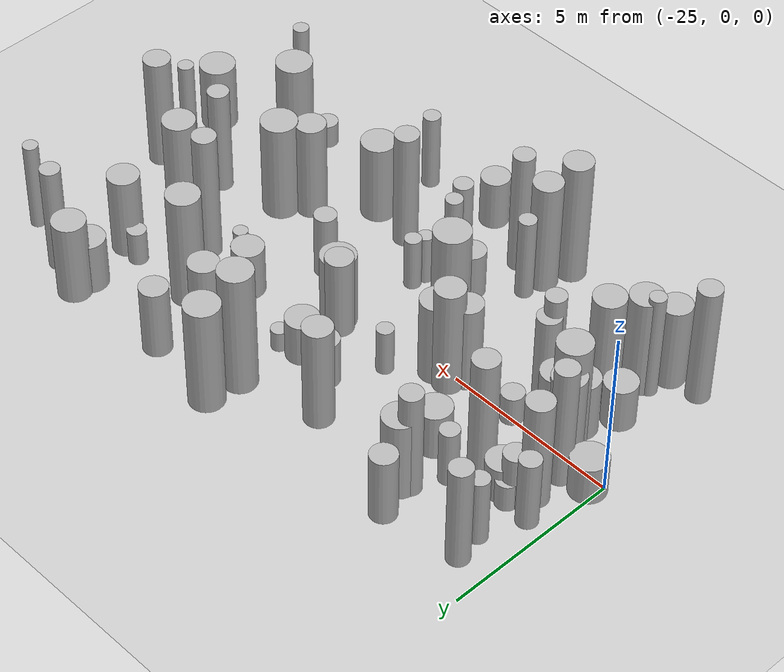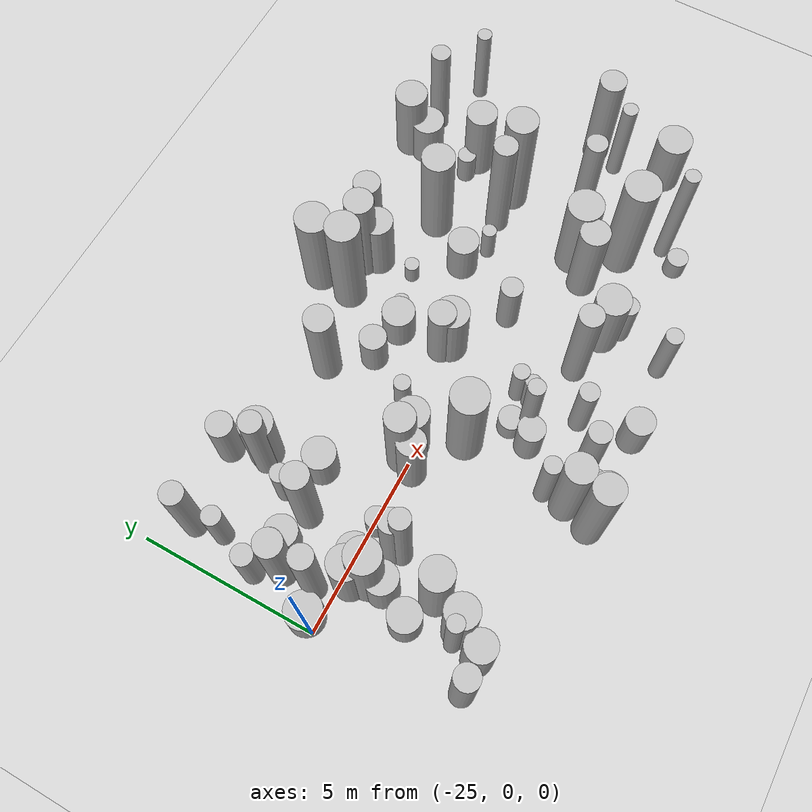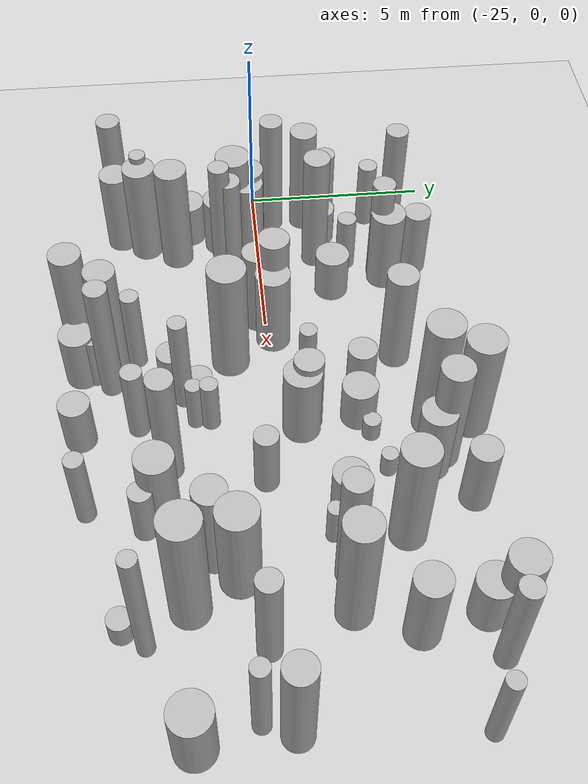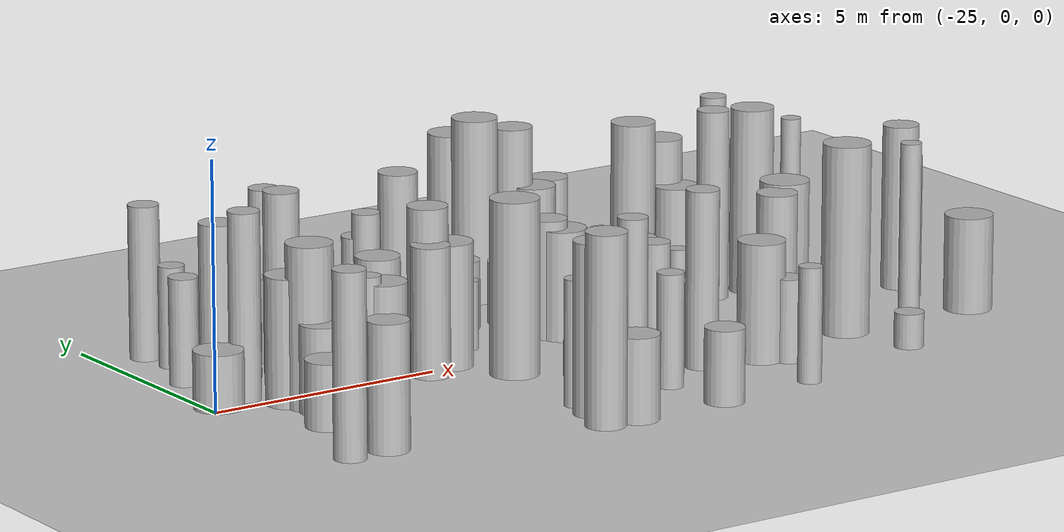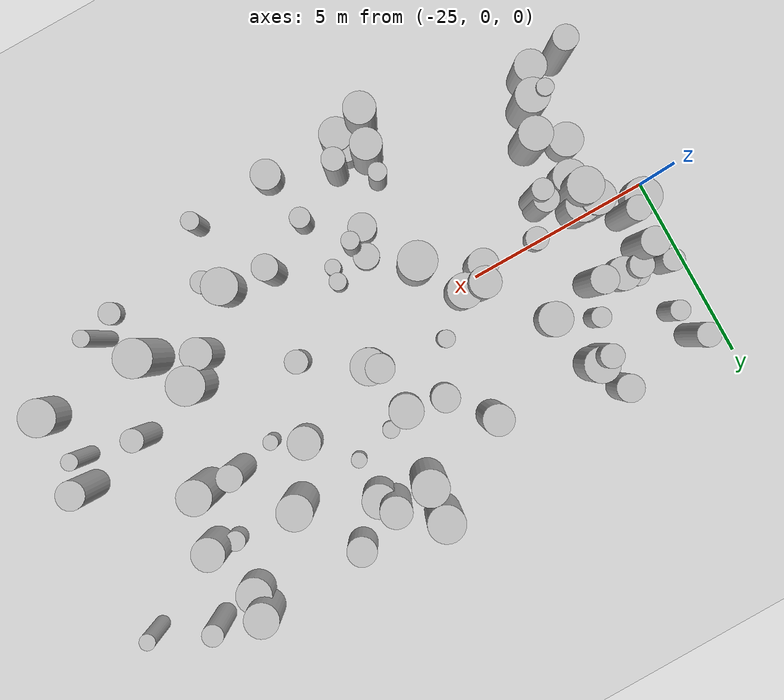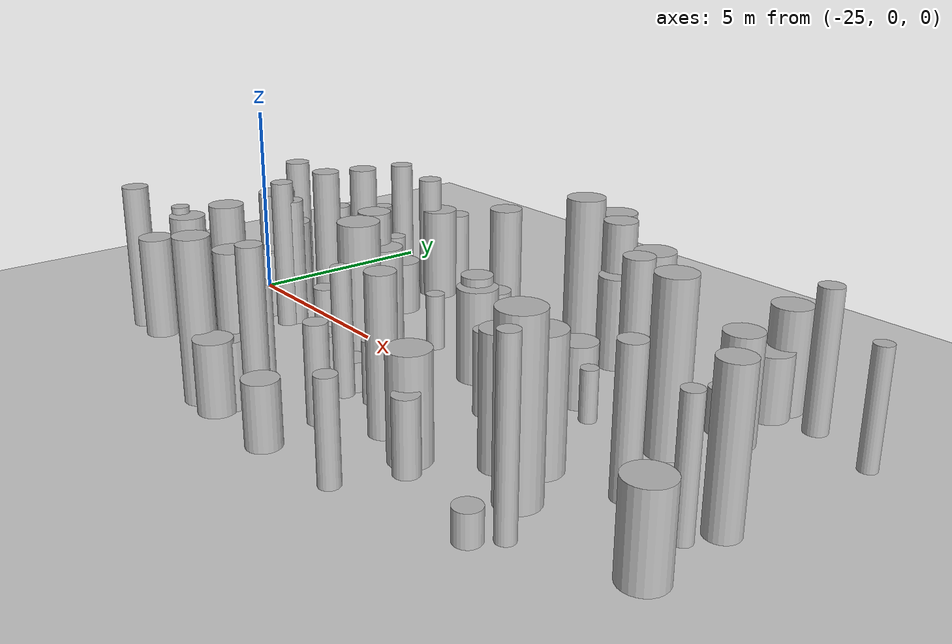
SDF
<sdf version="1.4">
 <world name="default">
  <include><uri>model://ground_plane</uri></include>
  <include><uri>model://sun</uri></include>
  <model name="forest">
   <static>true</static>
   <link name="cylinder5">
    <pose>-23.679742061325815 2.01241743389272 0.4087587626797539 0 0 0</pose>
    <visual name="visual">
     <geometry>
      <cylinder><radius>0.30006810378759863</radius><length>0.8175175253595078</length></cylinder>
     </geometry>
    </visual>
    <collision name="collision">
     <geometry>
      <cylinder><radius>0.30006810378759863</radius><length>0.8175175253595078</length></cylinder>
     </geometry>
     <max_contacts>0</max_contacts>
    </collision>
   </link>
   <link name="cylinder7">
    <pose>-10.525573063987343 -0.618550906194625 1.607458766258477 0 0 0</pose>
    <visual name="visual">
     <geometry>
      <cylinder><radius>0.29693377543695243</radius><length>3.214917532516954</length></cylinder>
     </geometry>
    </visual>
    <collision name="collision">
     <geometry>
      <cylinder><radius>0.29693377543695243</radius><length>3.214917532516954</length></cylinder>
     </geometry>
     <max_contacts>0</max_contacts>
    </collision>
   </link>
   <link name="cylinder8">
    <pose>-21.800550094250998 3.261826505791305 1.4079845272820526 0 0 0</pose>
    <visual name="visual">
     <geometry>
      <cylinder><radius>0.2014375265154011</radius><length>2.815969054564105</length></cylinder>
     </geometry>
    </visual>
    <collision name="collision">
     <geometry>
      <cylinder><radius>0.2014375265154011</radius><length>2.815969054564105</length></cylinder>
     </geometry>
     <max_contacts>0</max_contacts>
    </collision>
   </link>
   <link name="cylinder9">
    <pose>-18.160809083049735 -4.134436356728669 1.8794305216573546 0 0 0</pose>
    <visual name="visual">
     <geometry>
      <cylinder><radius>0.2956200059763034</radius><length>3.758861043314709</length></cylinder>
     </geometry>
    </visual>
    <collision name="collision">
     <geometry>
      <cylinder><radius>0.2956200059763034</radius><length>3.758861043314709</length></cylinder>
     </geometry>
     <max_contacts>0</max_contacts>
    </collision>
   </link>
   <link name="cylinder16">
    <pose>-13.255122866712126 1.1187745779611848 0.6129788862393675 0 0 0</pose>
    <visual name="visual">
     <geometry>
      <cylinder><radius>0.20268167410298113</radius><length>1.225957772478735</length></cylinder>
     </geometry>
    </visual>
    <collision name="collision">
     <geometry>
      <cylinder><radius>0.20268167410298113</radius><length>1.225957772478735</length></cylinder>
     </geometry>
     <max_contacts>0</max_contacts>
    </collision>
   </link>
   <link name="cylinder18">
    <pose>-18.015127092285212 -2.5297718127896287 0.7112004149707867 0 0 0</pose>
    <visual name="visual">
     <geometry>
      <cylinder><radius>0.3739082902309111</radius><length>1.4224008299415734</length></cylinder>
     </geometry>
    </visual>
    <collision name="collision">
     <geometry>
      <cylinder><radius>0.3739082902309111</radius><length>1.4224008299415734</length></cylinder>
     </geometry>
     <max_contacts>0</max_contacts>
    </collision>
   </link>
   <link name="cylinder19">
    <pose>-14.986373206738374 2.6608807107499732 0.34965633167286914 0 0 0</pose>
    <visual name="visual">
     <geometry>
      <cylinder><radius>0.20911420880428544</radius><length>0.6993126633457383</length></cylinder>
     </geometry>
    </visual>
    <collision name="collision">
     <geometry>
      <cylinder><radius>0.20911420880428544</radius><length>0.6993126633457383</length></cylinder>
     </geometry>
     <max_contacts>0</max_contacts>
    </collision>
   </link>
   <link name="cylinder26">
    <pose>-15.441778785360121 -2.6818119872697443 1.7981005157965062 0 0 0</pose>
    <visual name="visual">
     <geometry>
      <cylinder><radius>0.33334163362651703</radius><length>3.5962010315930124</length></cylinder>
     </geometry>
    </visual>
    <collision name="collision">
     <geometry>
      <cylinder><radius>0.33334163362651703</radius><length>3.5962010315930124</length></cylinder>
     </geometry>
     <max_contacts>0</max_contacts>
    </collision>
   </link>
   <link name="cylinder31">
    <pose>-23.738585029574498 1.817528318224376 0.8247612334664344 0 0 0</pose>
    <visual name="visual">
     <geometry>
      <cylinder><radius>0.32685892989750714</radius><length>1.6495224669328687</length></cylinder>
     </geometry>
    </visual>
    <collision name="collision">
     <geometry>
      <cylinder><radius>0.32685892989750714</radius><length>1.6495224669328687</length></cylinder>
     </geometry>
     <max_contacts>0</max_contacts>
    </collision>
   </link>
   <link name="cylinder33">
    <pose>-22.20371293826167 -1.0198286153366718 1.8924943667401357 0 0 0</pose>
    <visual name="visual">
     <geometry>
      <cylinder><radius>0.27601700017954345</radius><length>3.7849887334802714</length></cylinder>
     </geometry>
    </visual>
    <collision name="collision">
     <geometry>
      <cylinder><radius>0.27601700017954345</radius><length>3.7849887334802714</length></cylinder>
     </geometry>
     <max_contacts>0</max_contacts>
    </collision>
   </link>
   <link name="cylinder40">
    <pose>-18.49357560465792 1.0151491741998022 0.7010873580335185 0 0 0</pose>
    <visual name="visual">
     <geometry>
      <cylinder><radius>0.23333337634097945</radius><length>1.402174716067037</length></cylinder>
     </geometry>
    </visual>
    <collision name="collision">
     <geometry>
      <cylinder><radius>0.23333337634097945</radius><length>1.402174716067037</length></cylinder>
     </geometry>
     <max_contacts>0</max_contacts>
    </collision>
   </link>
   <link name="cylinder41">
    <pose>-16.223117321788628 4.930585165584869 1.644054146244402 0 0 0</pose>
    <visual name="visual">
     <geometry>
      <cylinder><radius>0.48408230626222676</radius><length>3.288108292488804</length></cylinder>
     </geometry>
    </visual>
    <collision name="collision">
     <geometry>
      <cylinder><radius>0.48408230626222676</radius><length>3.288108292488804</length></cylinder>
     </geometry>
     <max_contacts>0</max_contacts>
    </collision>
   </link>
   <link name="cylinder43">
    <pose>-21.837048398225804 -0.08602022806299559 0.43983961650292613 0 0 0</pose>
    <visual name="visual">
     <geometry>
      <cylinder><radius>0.31036477772576027</radius><length>0.8796792330058523</length></cylinder>
     </geometry>
    </visual>
    <collision name="collision">
     <geometry>
      <cylinder><radius>0.31036477772576027</radius><length>0.8796792330058523</length></cylinder>
     </geometry>
     <max_contacts>0</max_contacts>
    </collision>
   </link>
   <link name="cylinder46">
    <pose>-12.891575511027565 -1.708502826013473 1.4711535961352924 0 0 0</pose>
    <visual name="visual">
     <geometry>
      <cylinder><radius>0.4126154002610912</radius><length>2.942307192270585</length></cylinder>
     </geometry>
    </visual>
    <collision name="collision">
     <geometry>
      <cylinder><radius>0.4126154002610912</radius><length>2.942307192270585</length></cylinder>
     </geometry>
     <max_contacts>0</max_contacts>
    </collision>
   </link>
   <link name="cylinder52">
    <pose>-16.8601363615864 -2.0002097697674657 0.7412490017964124 0 0 0</pose>
    <visual name="visual">
     <geometry>
      <cylinder><radius>0.2123701967409388</radius><length>1.4824980035928248</length></cylinder>
     </geometry>
    </visual>
    <collision name="collision">
     <geometry>
      <cylinder><radius>0.2123701967409388</radius><length>1.4824980035928248</length></cylinder>
     </geometry>
     <max_contacts>0</max_contacts>
    </collision>
   </link>
   <link name="cylinder53">
    <pose>-13.144577644127398 2.8485634309416943 1.7484170588877241 0 0 0</pose>
    <visual name="visual">
     <geometry>
      <cylinder><radius>0.45996686888993416</radius><length>3.4968341177754483</length></cylinder>
     </geometry>
    </visual>
    <collision name="collision">
     <geometry>
      <cylinder><radius>0.45996686888993416</radius><length>3.4968341177754483</length></cylinder>
     </geometry>
     <max_contacts>0</max_contacts>
    </collision>
   </link>
   <link name="cylinder55">
    <pose>-8.5950041946599 -0.18264373152601188 1.7082149559520043 0 0 0</pose>
    <visual name="visual">
     <geometry>
      <cylinder><radius>0.37351376677049514</radius><length>3.4164299119040087</length></cylinder>
     </geometry>
    </visual>
    <collision name="collision">
     <geometry>
      <cylinder><radius>0.37351376677049514</radius><length>3.4164299119040087</length></cylinder>
     </geometry>
     <max_contacts>0</max_contacts>
    </collision>
   </link>
   <link name="cylinder58">
    <pose>-11.255020018472834 1.3289213521882672 1.9238639992878968 0 0 0</pose>
    <visual name="visual">
     <geometry>
      <cylinder><radius>0.4449356155917538</radius><length>3.8477279985757935</length></cylinder>
     </geometry>
    </visual>
    <collision name="collision">
     <geometry>
      <cylinder><radius>0.4449356155917538</radius><length>3.8477279985757935</length></cylinder>
     </geometry>
     <max_contacts>0</max_contacts>
    </collision>
   </link>
   <link name="cylinder59">
    <pose>-24.002782389595684 0.5042752308654723 1.8770728420283596 0 0 0</pose>
    <visual name="visual">
     <geometry>
      <cylinder><radius>0.3143003682034119</radius><length>3.754145684056719</length></cylinder>
     </geometry>
    </visual>
    <collision name="collision">
     <geometry>
      <cylinder><radius>0.3143003682034119</radius><length>3.754145684056719</length></cylinder>
     </geometry>
     <max_contacts>0</max_contacts>
    </collision>
   </link>
   <link name="cylinder60">
    <pose>-11.20258796285028 -3.8493136906173753 0.3564758136327316 0 0 0</pose>
    <visual name="visual">
     <geometry>
      <cylinder><radius>0.2998729793484964</radius><length>0.7129516272654632</length></cylinder>
     </geometry>
    </visual>
    <collision name="collision">
     <geometry>
      <cylinder><radius>0.2998729793484964</radius><length>0.7129516272654632</length></cylinder>
     </geometry>
     <max_contacts>0</max_contacts>
    </collision>
   </link>
   <link name="cylinder66">
    <pose>-14.1715463676721 -2.917855704786513 1.2150279252211407 0 0 0</pose>
    <visual name="visual">
     <geometry>
      <cylinder><radius>0.47778043909406503</radius><length>2.4300558504422813</length></cylinder>
     </geometry>
    </visual>
    <collision name="collision">
     <geometry>
      <cylinder><radius>0.47778043909406503</radius><length>2.4300558504422813</length></cylinder>
     </geometry>
     <max_contacts>0</max_contacts>
    </collision>
   </link>
   <link name="cylinder68">
    <pose>-14.887149694921693 -0.34536853120764555 0.9706076712247758 0 0 0</pose>
    <visual name="visual">
     <geometry>
      <cylinder><radius>0.30774516073615427</radius><length>1.9412153424495515</length></cylinder>
     </geometry>
    </visual>
    <collision name="collision">
     <geometry>
      <cylinder><radius>0.30774516073615427</radius><length>1.9412153424495515</length></cylinder>
     </geometry>
     <max_contacts>0</max_contacts>
    </collision>
   </link>
   <link name="cylinder70">
    <pose>-16.792238933854627 -1.6147479718565183 0.7901780546410666 0 0 0</pose>
    <visual name="visual">
     <geometry>
      <cylinder><radius>0.23072785165468096</radius><length>1.5803561092821332</length></cylinder>
     </geometry>
    </visual>
    <collision name="collision">
     <geometry>
      <cylinder><radius>0.23072785165468096</radius><length>1.5803561092821332</length></cylinder>
     </geometry>
     <max_contacts>0</max_contacts>
    </collision>
   </link>
   <link name="cylinder72">
    <pose>-8.315024353677362 3.9044192635447157 1.3431335159264037 0 0 0</pose>
    <visual name="visual">
     <geometry>
      <cylinder><radius>0.2103194928219873</radius><length>2.6862670318528075</length></cylinder>
     </geometry>
    </visual>
    <collision name="collision">
     <geometry>
      <cylinder><radius>0.2103194928219873</radius><length>2.6862670318528075</length></cylinder>
     </geometry>
     <max_contacts>0</max_contacts>
    </collision>
   </link>
   <link name="cylinder76">
    <pose>-23.21263782120473 -3.178663896762618 1.5342078549653122 0 0 0</pose>
    <visual name="visual">
     <geometry>
      <cylinder><radius>0.441936661298123</radius><length>3.0684157099306244</length></cylinder>
     </geometry>
    </visual>
    <collision name="collision">
     <geometry>
      <cylinder><radius>0.441936661298123</radius><length>3.0684157099306244</length></cylinder>
     </geometry>
     <max_contacts>0</max_contacts>
    </collision>
   </link>
   <link name="cylinder77">
    <pose>-16.689673175686437 2.135176522671366 0.6310616914309508 0 0 0</pose>
    <visual name="visual">
     <geometry>
      <cylinder><radius>0.45890008550078465</radius><length>1.2621233828619016</length></cylinder>
     </geometry>
    </visual>
    <collision name="collision">
     <geometry>
      <cylinder><radius>0.45890008550078465</radius><length>1.2621233828619016</length></cylinder>
     </geometry>
     <max_contacts>0</max_contacts>
    </collision>
   </link>
   <link name="cylinder79">
    <pose>-10.999800799312503 4.311692076800821 0.7698859985121229 0 0 0</pose>
    <visual name="visual">
     <geometry>
      <cylinder><radius>0.4735187933917541</radius><length>1.5397719970242458</length></cylinder>
     </geometry>
    </visual>
    <collision name="collision">
     <geometry>
      <cylinder><radius>0.4735187933917541</radius><length>1.5397719970242458</length></cylinder>
     </geometry>
     <max_contacts>0</max_contacts>
    </collision>
   </link>
   <link name="cylinder81">
    <pose>-20.1601837393649 -0.1788693429490804 1.3222436946086389 0 0 0</pose>
    <visual name="visual">
     <geometry>
      <cylinder><radius>0.39195667636804743</radius><length>2.6444873892172778</length></cylinder>
     </geometry>
    </visual>
    <collision name="collision">
     <geometry>
      <cylinder><radius>0.39195667636804743</radius><length>2.6444873892172778</length></cylinder>
     </geometry>
     <max_contacts>0</max_contacts>
    </collision>
   </link>
   <link name="cylinder83">
    <pose>-19.315599351364842 -4.890521053171561 1.9078571329891796 0 0 0</pose>
    <visual name="visual">
     <geometry>
      <cylinder><radius>0.40758707059049837</radius><length>3.815714265978359</length></cylinder>
     </geometry>
    </visual>
    <collision name="collision">
     <geometry>
      <cylinder><radius>0.40758707059049837</radius><length>3.815714265978359</length></cylinder>
     </geometry>
     <max_contacts>0</max_contacts>
    </collision>
   </link>
   <link name="cylinder85">
    <pose>-19.047170470343634 -4.106897316308888 1.7123463860957733 0 0 0</pose>
    <visual name="visual">
     <geometry>
      <cylinder><radius>0.40598088709907587</radius><length>3.4246927721915466</length></cylinder>
     </geometry>
    </visual>
    <collision name="collision">
     <geometry>
      <cylinder><radius>0.40598088709907587</radius><length>3.4246927721915466</length></cylinder>
     </geometry>
     <max_contacts>0</max_contacts>
    </collision>
   </link>
   <link name="cylinder86">
    <pose>-17.565739772354643 -2.2725960441776794 1.518001080866863 0 0 0</pose>
    <visual name="visual">
     <geometry>
      <cylinder><radius>0.2343963553725524</radius><length>3.036002161733726</length></cylinder>
     </geometry>
    </visual>
    <collision name="collision">
     <geometry>
      <cylinder><radius>0.2343963553725524</radius><length>3.036002161733726</length></cylinder>
     </geometry>
     <max_contacts>0</max_contacts>
    </collision>
   </link>
   <link name="cylinder92">
    <pose>-23.605255366187304 -3.890545337483985 1.2733394704843657 0 0 0</pose>
    <visual name="visual">
     <geometry>
      <cylinder><radius>0.41656951138443865</radius><length>2.5466789409687314</length></cylinder>
     </geometry>
    </visual>
    <collision name="collision">
     <geometry>
      <cylinder><radius>0.41656951138443865</radius><length>2.5466789409687314</length></cylinder>
     </geometry>
     <max_contacts>0</max_contacts>
    </collision>
   </link>
   <link name="cylinder93">
    <pose>-12.235898153140761 1.3350769733852665 1.9634211387676475 0 0 0</pose>
    <visual name="visual">
     <geometry><cylinder><radius>0.330889316918051</radius><length>3.926842277535295</length></cylinder></geometry>
    </visual>
    <collision name="collision">
     <geometry><cylinder><radius>0.330889316918051</radius><length>3.926842277535295</length></cylinder></geometry>
     <max_contacts>0</max_contacts>
    </collision>
   </link>
   <link name="cylinder94">
    <pose>-16.75526346000349 -3.439557151980136 1.1465755843672694 0 0 0</pose>
    <visual name="visual">
     <geometry>
      <cylinder><radius>0.27008244437615614</radius><length>2.2931511687345387</length></cylinder>
     </geometry>
    </visual>
    <collision name="collision">
     <geometry>
      <cylinder><radius>0.27008244437615614</radius><length>2.2931511687345387</length></cylinder>
     </geometry>
     <max_contacts>0</max_contacts>
    </collision>
   </link>
   <link name="cylinder98">
    <pose>-23.955404658718336 3.2678894962946554 1.0246416726079297 0 0 0</pose>
    <visual name="visual">
     <geometry>
      <cylinder><radius>0.2633409792177793</radius><length>2.0492833452158594</length></cylinder>
     </geometry>
    </visual>
    <collision name="collision">
     <geometry>
      <cylinder><radius>0.2633409792177793</radius><length>2.0492833452158594</length></cylinder>
     </geometry>
     <max_contacts>0</max_contacts>
    </collision>
   </link>
   <link name="cylinder102">
    <pose>-15.00821290799028 3.7248631773758447 1.129759583893875 0 0 0</pose>
    <visual name="visual">
     <geometry><cylinder><radius>0.4488156692700892</radius><length>2.25951916778775</length></cylinder></geometry>
    </visual>
    <collision name="collision">
     <geometry><cylinder><radius>0.4488156692700892</radius><length>2.25951916778775</length></cylinder></geometry>
     <max_contacts>0</max_contacts>
    </collision>
   </link>
   <link name="cylinder104">
    <pose>-22.18188798173581 2.463102872865159 0.8566256288298284 0 0 0</pose>
    <visual name="visual">
     <geometry>
      <cylinder><radius>0.2638952859394953</radius><length>1.7132512576596568</length></cylinder>
     </geometry>
    </visual>
    <collision name="collision">
     <geometry>
      <cylinder><radius>0.2638952859394953</radius><length>1.7132512576596568</length></cylinder>
     </geometry>
     <max_contacts>0</max_contacts>
    </collision>
   </link>
   <link name="cylinder109">
    <pose>-23.072656302917494 -0.24918152201535815 1.2140573640753478 0 0 0</pose>
    <visual name="visual">
     <geometry>
      <cylinder><radius>0.44681803255156716</radius><length>2.4281147281506956</length></cylinder>
     </geometry>
    </visual>
    <collision name="collision">
     <geometry>
      <cylinder><radius>0.44681803255156716</radius><length>2.4281147281506956</length></cylinder>
     </geometry>
     <max_contacts>0</max_contacts>
    </collision>
   </link>
   <link name="cylinder110">
    <pose>-24.037472706217272 1.4096657515775846 1.6666092819000085 0 0 0</pose>
    <visual name="visual">
     <geometry>
      <cylinder><radius>0.3696642518014781</radius><length>3.333218563800017</length></cylinder>
     </geometry>
    </visual>
    <collision name="collision">
     <geometry>
      <cylinder><radius>0.3696642518014781</radius><length>3.333218563800017</length></cylinder>
     </geometry>
     <max_contacts>0</max_contacts>
    </collision>
   </link>
   <link name="cylinder111">
    <pose>-10.648557340793968 2.766643484747312 1.2412183028771706 0 0 0</pose>
    <visual name="visual">
     <geometry>
      <cylinder><radius>0.4359979336834159</radius><length>2.482436605754341</length></cylinder>
     </geometry>
    </visual>
    <collision name="collision">
     <geometry>
      <cylinder><radius>0.4359979336834159</radius><length>2.482436605754341</length></cylinder>
     </geometry>
     <max_contacts>0</max_contacts>
    </collision>
   </link>
   <link name="cylinder113">
    <pose>-14.01765353285257 1.5491414169471804 0.7386839788884425 0 0 0</pose>
    <visual name="visual">
     <geometry>
      <cylinder><radius>0.4390847634054099</radius><length>1.477367957776885</length></cylinder>
     </geometry>
    </visual>
    <collision name="collision">
     <geometry>
      <cylinder><radius>0.4390847634054099</radius><length>1.477367957776885</length></cylinder>
     </geometry>
     <max_contacts>0</max_contacts>
    </collision>
   </link>
   <link name="cylinder114">
    <pose>-18.586567516741297 -4.899811301048916 0.8513382026945039 0 0 0</pose>
    <visual name="visual">
     <geometry>
      <cylinder><radius>0.4417869751457382</radius><length>1.7026764053890078</length></cylinder>
     </geometry>
    </visual>
    <collision name="collision">
     <geometry>
      <cylinder><radius>0.4417869751457382</radius><length>1.7026764053890078</length></cylinder>
     </geometry>
     <max_contacts>0</max_contacts>
    </collision>
   </link>
   <link name="cylinder116">
    <pose>-10.999834425802662 4.852727664397486 1.2280627721068265 0 0 0</pose>
    <visual name="visual">
     <geometry>
      <cylinder><radius>0.45805294557182885</radius><length>2.456125544213653</length></cylinder>
     </geometry>
    </visual>
    <collision name="collision">
     <geometry>
      <cylinder><radius>0.45805294557182885</radius><length>2.456125544213653</length></cylinder>
     </geometry>
     <max_contacts>0</max_contacts>
    </collision>
   </link>
   <link name="cylinder120">
    <pose>-24.72881158626487 0.3070749677650273 0.5772148485738616 0 0 0</pose>
    <visual name="visual">
     <geometry>
      <cylinder><radius>0.49853831401033893</radius><length>1.1544296971477233</length></cylinder>
     </geometry>
    </visual>
    <collision name="collision">
     <geometry>
      <cylinder><radius>0.49853831401033893</radius><length>1.1544296971477233</length></cylinder>
     </geometry>
     <max_contacts>0</max_contacts>
    </collision>
   </link>
   <link name="cylinder123">
    <pose>-16.098505909066482 2.3869953905625447 0.3076052904125777 0 0 0</pose>
    <visual name="visual">
     <geometry>
      <cylinder><radius>0.22712801106276725</radius><length>0.6152105808251555</length></cylinder>
     </geometry>
    </visual>
    <collision name="collision">
     <geometry>
      <cylinder><radius>0.22712801106276725</radius><length>0.6152105808251555</length></cylinder>
     </geometry>
     <max_contacts>0</max_contacts>
    </collision>
   </link>
   <link name="cylinder124">
    <pose>-11.203765662934707 2.8952525008613534 0.5135648505123283 0 0 0</pose>
    <visual name="visual">
     <geometry>
      <cylinder><radius>0.26400455507282866</radius><length>1.0271297010246565</length></cylinder>
     </geometry>
    </visual>
    <collision name="collision">
     <geometry>
      <cylinder><radius>0.26400455507282866</radius><length>1.0271297010246565</length></cylinder>
     </geometry>
     <max_contacts>0</max_contacts>
    </collision>
   </link>
   <link name="cylinder126">
    <pose>-21.902726659275363 4.363762337685518 1.0340782802459074 0 0 0</pose>
    <visual name="visual">
     <geometry>
      <cylinder><radius>0.3630960022357797</radius><length>2.068156560491815</length></cylinder>
     </geometry>
    </visual>
    <collision name="collision">
     <geometry>
      <cylinder><radius>0.3630960022357797</radius><length>2.068156560491815</length></cylinder>
     </geometry>
     <max_contacts>0</max_contacts>
    </collision>
   </link>
   <link name="cylinder127">
    <pose>-17.752732421065467 -1.8676047788331465 0.3646359837134945 0 0 0</pose>
    <visual name="visual">
     <geometry>
      <cylinder><radius>0.35133329433131766</radius><length>0.729271967426989</length></cylinder>
     </geometry>
    </visual>
    <collision name="collision">
     <geometry>
      <cylinder><radius>0.35133329433131766</radius><length>0.729271967426989</length></cylinder>
     </geometry>
     <max_contacts>0</max_contacts>
    </collision>
   </link>
   <link name="cylinder133">
    <pose>-19.940750323801392 0.24716783053184876 1.6526581308329618 0 0 0</pose>
    <visual name="visual">
     <geometry>
      <cylinder><radius>0.40656298232410637</radius><length>3.3053162616659235</length></cylinder>
     </geometry>
    </visual>
    <collision name="collision">
     <geometry>
      <cylinder><radius>0.40656298232410637</radius><length>3.3053162616659235</length></cylinder>
     </geometry>
     <max_contacts>0</max_contacts>
    </collision>
   </link>
   <link name="cylinder134">
    <pose>-8.49681548424142 -2.3227869103806476 0.9886757873030274 0 0 0</pose>
    <visual name="visual">
     <geometry>
      <cylinder><radius>0.4960470987908746</radius><length>1.9773515746060548</length></cylinder>
     </geometry>
    </visual>
    <collision name="collision">
     <geometry>
      <cylinder><radius>0.4960470987908746</radius><length>1.9773515746060548</length></cylinder>
     </geometry>
     <max_contacts>0</max_contacts>
    </collision>
   </link>
   <link name="cylinder135">
    <pose>-23.23590206211388 -0.6128641634697543 1.627294312037436 0 0 0</pose>
    <visual name="visual">
     <geometry>
      <cylinder><radius>0.4680214026659879</radius><length>3.254588624074872</length></cylinder>
     </geometry>
    </visual>
    <collision name="collision">
     <geometry>
      <cylinder><radius>0.4680214026659879</radius><length>3.254588624074872</length></cylinder>
     </geometry>
     <max_contacts>0</max_contacts>
    </collision>
   </link>
   <link name="cylinder137">
    <pose>-22.233174722777406 -0.7901976541597975 1.6385657293357017 0 0 0</pose>
    <visual name="visual">
     <geometry>
      <cylinder><radius>0.3259277537217762</radius><length>3.2771314586714033</length></cylinder>
     </geometry>
    </visual>
    <collision name="collision">
     <geometry>
      <cylinder><radius>0.3259277537217762</radius><length>3.2771314586714033</length></cylinder>
     </geometry>
     <max_contacts>0</max_contacts>
    </collision>
   </link>
   <link name="cylinder138">
    <pose>-13.996701342875939 4.626544473793073 1.0487758882916953 0 0 0</pose>
    <visual name="visual">
     <geometry>
      <cylinder><radius>0.3903911862828955</radius><length>2.0975517765833906</length></cylinder>
     </geometry>
    </visual>
    <collision name="collision">
     <geometry>
      <cylinder><radius>0.3903911862828955</radius><length>2.0975517765833906</length></cylinder>
     </geometry>
     <max_contacts>0</max_contacts>
    </collision>
   </link>
   <link name="cylinder148">
    <pose>-10.800916298256913 -3.3197060132262157 1.9957502735975552 0 0 0</pose>
    <visual name="visual">
     <geometry>
      <cylinder><radius>0.213688495136652</radius><length>3.9915005471951104</length></cylinder>
     </geometry>
    </visual>
    <collision name="collision">
     <geometry>
      <cylinder><radius>0.213688495136652</radius><length>3.9915005471951104</length></cylinder>
     </geometry>
     <max_contacts>0</max_contacts>
    </collision>
   </link>
   <link name="cylinder152">
    <pose>-13.772552205006722 -3.2939459397077586 0.8498652666573677 0 0 0</pose>
    <visual name="visual">
     <geometry>
      <cylinder><radius>0.29442839103103446</radius><length>1.6997305333147354</length></cylinder>
     </geometry>
    </visual>
    <collision name="collision">
     <geometry>
      <cylinder><radius>0.29442839103103446</radius><length>1.6997305333147354</length></cylinder>
     </geometry>
     <max_contacts>0</max_contacts>
    </collision>
   </link>
   <link name="cylinder156">
    <pose>-23.33114715978671 1.8049930986271683 0.5505103316145317 0 0 0</pose>
    <visual name="visual">
     <geometry>
      <cylinder><radius>0.4474618792871268</radius><length>1.1010206632290633</length></cylinder>
     </geometry>
    </visual>
    <collision name="collision">
     <geometry>
      <cylinder><radius>0.4474618792871268</radius><length>1.1010206632290633</length></cylinder>
     </geometry>
     <max_contacts>0</max_contacts>
    </collision>
   </link>
   <link name="cylinder157">
    <pose>-16.65641346838639 0.8293379705848638 1.2176422875414226 0 0 0</pose>
    <visual name="visual">
     <geometry>
      <cylinder><radius>0.3782896703102468</radius><length>2.435284575082845</length></cylinder>
     </geometry>
    </visual>
    <collision name="collision">
     <geometry>
      <cylinder><radius>0.3782896703102468</radius><length>2.435284575082845</length></cylinder>
     </geometry>
     <max_contacts>0</max_contacts>
    </collision>
   </link>
   <link name="cylinder161">
    <pose>-18.742777390814467 -1.009117516331659 1.7760943164865732 0 0 0</pose>
    <visual name="visual">
     <geometry>
      <cylinder><radius>0.4977640077305357</radius><length>3.5521886329731465</length></cylinder>
     </geometry>
    </visual>
    <collision name="collision">
     <geometry>
      <cylinder><radius>0.4977640077305357</radius><length>3.5521886329731465</length></cylinder>
     </geometry>
     <max_contacts>0</max_contacts>
    </collision>
   </link>
   <link name="cylinder163">
    <pose>-21.755599805051084 3.3388946421496755 1.6367117627269638 0 0 0</pose>
    <visual name="visual">
     <geometry>
      <cylinder><radius>0.3076506964577306</radius><length>3.2734235254539277</length></cylinder>
     </geometry>
    </visual>
    <collision name="collision">
     <geometry>
      <cylinder><radius>0.3076506964577306</radius><length>3.2734235254539277</length></cylinder>
     </geometry>
     <max_contacts>0</max_contacts>
    </collision>
   </link>
   <link name="cylinder164">
    <pose>-19.452815821229564 0.18153647695419828 1.2667156771276402 0 0 0</pose>
    <visual name="visual">
     <geometry>
      <cylinder><radius>0.4553972279128156</radius><length>2.5334313542552804</length></cylinder>
     </geometry>
    </visual>
    <collision name="collision">
     <geometry>
      <cylinder><radius>0.4553972279128156</radius><length>2.5334313542552804</length></cylinder>
     </geometry>
     <max_contacts>0</max_contacts>
    </collision>
   </link>
   <link name="cylinder170">
    <pose>-9.91414190274117 4.493372428465239 1.6325505285765125 0 0 0</pose>
    <visual name="visual">
     <geometry>
      <cylinder><radius>0.2766535641503135</radius><length>3.265101057153025</length></cylinder>
     </geometry>
    </visual>
    <collision name="collision">
     <geometry>
      <cylinder><radius>0.2766535641503135</radius><length>3.265101057153025</length></cylinder>
     </geometry>
     <max_contacts>0</max_contacts>
    </collision>
   </link>
   <link name="cylinder171">
    <pose>-23.231607326728053 -1.037267165171507 0.879138095795465 0 0 0</pose>
    <visual name="visual">
     <geometry><cylinder><radius>0.4513860533433242</radius><length>1.75827619159093</length></cylinder></geometry>
    </visual>
    <collision name="collision">
     <geometry><cylinder><radius>0.4513860533433242</radius><length>1.75827619159093</length></cylinder></geometry>
     <max_contacts>0</max_contacts>
    </collision>
   </link>
   <link name="cylinder174">
    <pose>-19.00094302681636 -3.46656808897591 1.2646036350028746 0 0 0</pose>
    <visual name="visual">
     <geometry>
      <cylinder><radius>0.24241896190291615</radius><length>2.5292072700057493</length></cylinder>
     </geometry>
    </visual>
    <collision name="collision">
     <geometry>
      <cylinder><radius>0.24241896190291615</radius><length>2.5292072700057493</length></cylinder>
     </geometry>
     <max_contacts>0</max_contacts>
    </collision>
   </link>
   <link name="cylinder175">
    <pose>-22.785806567781826 -2.308398253645799 1.6505538550977046 0 0 0</pose>
    <visual name="visual">
     <geometry>
      <cylinder><radius>0.4354451325554038</radius><length>3.301107710195409</length></cylinder>
     </geometry>
    </visual>
    <collision name="collision">
     <geometry>
      <cylinder><radius>0.4354451325554038</radius><length>3.301107710195409</length></cylinder>
     </geometry>
     <max_contacts>0</max_contacts>
    </collision>
   </link>
   <link name="cylinder178">
    <pose>-17.738650077021717 2.3290511637751568 0.7067210501581181 0 0 0</pose>
    <visual name="visual">
     <geometry>
      <cylinder><radius>0.37907065869972706</radius><length>1.4134421003162363</length></cylinder>
     </geometry>
    </visual>
    <collision name="collision">
     <geometry>
      <cylinder><radius>0.37907065869972706</radius><length>1.4134421003162363</length></cylinder>
     </geometry>
     <max_contacts>0</max_contacts>
    </collision>
   </link>
   <link name="cylinder182">
    <pose>-11.62342067817525 -2.3145407236251847 1.9510908386132861 0 0 0</pose>
    <visual name="visual">
     <geometry>
      <cylinder><radius>0.49075767830499684</radius><length>3.9021816772265723</length></cylinder>
     </geometry>
    </visual>
    <collision name="collision">
     <geometry>
      <cylinder><radius>0.49075767830499684</radius><length>3.9021816772265723</length></cylinder>
     </geometry>
     <max_contacts>0</max_contacts>
    </collision>
   </link>
   <link name="cylinder183">
    <pose>-24.41840202625094 2.0730992172725546 1.0794355851132726 0 0 0</pose>
    <visual name="visual">
     <geometry>
      <cylinder><radius>0.29016238165704444</radius><length>2.1588711702265453</length></cylinder>
     </geometry>
    </visual>
    <collision name="collision">
     <geometry>
      <cylinder><radius>0.29016238165704444</radius><length>2.1588711702265453</length></cylinder>
     </geometry>
     <max_contacts>0</max_contacts>
    </collision>
   </link>
   <link name="cylinder188">
    <pose>-23.678281157337643 -1.9260047862645244 0.6637990713713274 0 0 0</pose>
    <visual name="visual">
     <geometry>
      <cylinder><radius>0.4503408454703359</radius><length>1.3275981427426549</length></cylinder>
     </geometry>
    </visual>
    <collision name="collision">
     <geometry>
      <cylinder><radius>0.4503408454703359</radius><length>1.3275981427426549</length></cylinder>
     </geometry>
     <max_contacts>0</max_contacts>
    </collision>
   </link>
   <link name="cylinder189">
    <pose>-24.4937173130523 -3.942521845214466 1.8374885493106938 0 0 0</pose>
    <visual name="visual">
     <geometry>
      <cylinder><radius>0.32365696702378866</radius><length>3.6749770986213877</length></cylinder>
     </geometry>
    </visual>
    <collision name="collision">
     <geometry>
      <cylinder><radius>0.32365696702378866</radius><length>3.6749770986213877</length></cylinder>
     </geometry>
     <max_contacts>0</max_contacts>
    </collision>
   </link>
   <link name="cylinder191">
    <pose>-16.433119885348738 0.6585710253977908 1.1222109158368343 0 0 0</pose>
    <visual name="visual">
     <geometry>
      <cylinder><radius>0.4832136584548369</radius><length>2.2444218316736686</length></cylinder>
     </geometry>
    </visual>
    <collision name="collision">
     <geometry>
      <cylinder><radius>0.4832136584548369</radius><length>2.2444218316736686</length></cylinder>
     </geometry>
     <max_contacts>0</max_contacts>
    </collision>
   </link>
   <link name="cylinder192">
    <pose>-24.093739145661154 4.054218804090397 1.5653264416932953 0 0 0</pose>
    <visual name="visual">
     <geometry>
      <cylinder><radius>0.3109777503104547</radius><length>3.1306528833865905</length></cylinder>
     </geometry>
    </visual>
    <collision name="collision">
     <geometry>
      <cylinder><radius>0.3109777503104547</radius><length>3.1306528833865905</length></cylinder>
     </geometry>
     <max_contacts>0</max_contacts>
    </collision>
   </link>
   <link name="cylinder201">
    <pose>-16.32493777402307 3.927068018443167 1.9090732417441472 0 0 0</pose>
    <visual name="visual">
     <geometry>
      <cylinder><radius>0.4708486939236307</radius><length>3.8181464834882943</length></cylinder>
     </geometry>
    </visual>
    <collision name="collision">
     <geometry>
      <cylinder><radius>0.4708486939236307</radius><length>3.8181464834882943</length></cylinder>
     </geometry>
     <max_contacts>0</max_contacts>
    </collision>
   </link>
   <link name="cylinder204">
    <pose>-14.327054883688495 -4.713159875758693 1.162177232607044 0 0 0</pose>
    <visual name="visual">
     <geometry>
      <cylinder><radius>0.24055345592850275</radius><length>2.324354465214088</length></cylinder>
     </geometry>
    </visual>
    <collision name="collision">
     <geometry>
      <cylinder><radius>0.24055345592850275</radius><length>2.324354465214088</length></cylinder>
     </geometry>
     <max_contacts>0</max_contacts>
    </collision>
   </link>
   <link name="cylinder211">
    <pose>-23.471964682922547 -0.22361302425921803 1.2862931808271392 0 0 0</pose>
    <visual name="visual">
     <geometry>
      <cylinder><radius>0.45851715008988025</radius><length>2.5725863616542783</length></cylinder>
     </geometry>
    </visual>
    <collision name="collision">
     <geometry>
      <cylinder><radius>0.45851715008988025</radius><length>2.5725863616542783</length></cylinder>
     </geometry>
     <max_contacts>0</max_contacts>
    </collision>
   </link>
   <link name="cylinder220">
    <pose>-12.287327534386655 -1.1496955089971639 1.497160470998836 0 0 0</pose>
    <visual name="visual">
     <geometry>
      <cylinder><radius>0.49997599590810304</radius><length>2.994320941997672</length></cylinder>
     </geometry>
    </visual>
    <collision name="collision">
     <geometry>
      <cylinder><radius>0.49997599590810304</radius><length>2.994320941997672</length></cylinder>
     </geometry>
     <max_contacts>0</max_contacts>
    </collision>
   </link>
   <link name="cylinder221">
    <pose>-21.186517240167063 1.9530869980343617 0.6822358768658572 0 0 0</pose>
    <visual name="visual">
     <geometry>
      <cylinder><radius>0.4589631799247112</radius><length>1.3644717537317144</length></cylinder>
     </geometry>
    </visual>
    <collision name="collision">
     <geometry>
      <cylinder><radius>0.4589631799247112</radius><length>1.3644717537317144</length></cylinder>
     </geometry>
     <max_contacts>0</max_contacts>
    </collision>
   </link>
   <link name="cylinder223">
    <pose>-8.87757694489694 -0.9176967745228346 1.4702681437211094 0 0 0</pose>
    <visual name="visual">
     <geometry>
      <cylinder><radius>0.21847937209490448</radius><length>2.9405362874422187</length></cylinder>
     </geometry>
    </visual>
    <collision name="collision">
     <geometry>
      <cylinder><radius>0.21847937209490448</radius><length>2.9405362874422187</length></cylinder>
     </geometry>
     <max_contacts>0</max_contacts>
    </collision>
   </link>
   <link name="cylinder231">
    <pose>-22.453976035000128 1.6051167031063107 1.8464026618271712 0 0 0</pose>
    <visual name="visual">
     <geometry>
      <cylinder><radius>0.3572863366952186</radius><length>3.6928053236543423</length></cylinder>
     </geometry>
    </visual>
    <collision name="collision">
     <geometry>
      <cylinder><radius>0.3572863366952186</radius><length>3.6928053236543423</length></cylinder>
     </geometry>
     <max_contacts>0</max_contacts>
    </collision>
   </link>
   <link name="cylinder236">
    <pose>-16.5268577091446 -4.902131161932078 0.7513235198064683 0 0 0</pose>
    <visual name="visual">
     <geometry>
      <cylinder><radius>0.4011744051062598</radius><length>1.5026470396129366</length></cylinder>
     </geometry>
    </visual>
    <collision name="collision">
     <geometry>
      <cylinder><radius>0.4011744051062598</radius><length>1.5026470396129366</length></cylinder>
     </geometry>
     <max_contacts>0</max_contacts>
    </collision>
   </link>
   <link name="cylinder239">
    <pose>-18.58011525363572 3.348868471618349 1.5684478046625068 0 0 0</pose>
    <visual name="visual">
     <geometry>
      <cylinder><radius>0.4022540064090877</radius><length>3.1368956093250135</length></cylinder>
     </geometry>
    </visual>
    <collision name="collision">
     <geometry>
      <cylinder><radius>0.4022540064090877</radius><length>3.1368956093250135</length></cylinder>
     </geometry>
     <max_contacts>0</max_contacts>
    </collision>
   </link>
   <link name="cylinder240">
    <pose>-21.52937764990064 3.476392529812438 1.2188474406944245 0 0 0</pose>
    <visual name="visual">
     <geometry>
      <cylinder><radius>0.46382211898884057</radius><length>2.437694881388849</length></cylinder>
     </geometry>
    </visual>
    <collision name="collision">
     <geometry>
      <cylinder><radius>0.46382211898884057</radius><length>2.437694881388849</length></cylinder>
     </geometry>
     <max_contacts>0</max_contacts>
    </collision>
   </link>
   <link name="cylinder242">
    <pose>-23.54944364253111 -3.18721559153743 1.6166777889921151 0 0 0</pose>
    <visual name="visual">
     <geometry>
      <cylinder><radius>0.22275694252259576</radius><length>3.2333555779842302</length></cylinder>
     </geometry>
    </visual>
    <collision name="collision">
     <geometry>
      <cylinder><radius>0.22275694252259576</radius><length>3.2333555779842302</length></cylinder>
     </geometry>
     <max_contacts>0</max_contacts>
    </collision>
   </link>
   <link name="cylinder245">
    <pose>-15.29898847235695 4.058784317180791 1.727683252457782 0 0 0</pose>
    <visual name="visual">
     <geometry>
      <cylinder><radius>0.40957250680302193</radius><length>3.455366504915564</length></cylinder>
     </geometry>
    </visual>
    <collision name="collision">
     <geometry>
      <cylinder><radius>0.40957250680302193</radius><length>3.455366504915564</length></cylinder>
     </geometry>
     <max_contacts>0</max_contacts>
    </collision>
   </link>
   <link name="cylinder248">
    <pose>-18.657101935501025 -4.534255020427392 0.8053711116309239 0 0 0</pose>
    <visual name="visual">
     <geometry>
      <cylinder><radius>0.42692255227114767</radius><length>1.6107422232618478</length></cylinder>
     </geometry>
    </visual>
    <collision name="collision">
     <geometry>
      <cylinder><radius>0.42692255227114767</radius><length>1.6107422232618478</length></cylinder>
     </geometry>
     <max_contacts>0</max_contacts>
    </collision>
   </link>
  </model>
 </world>
</sdf>
